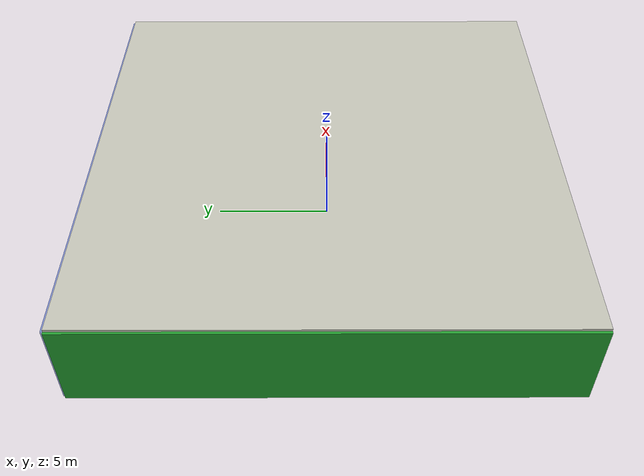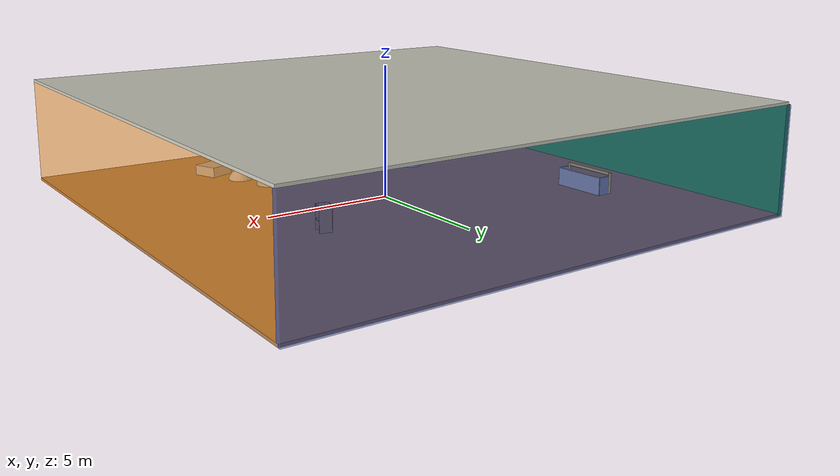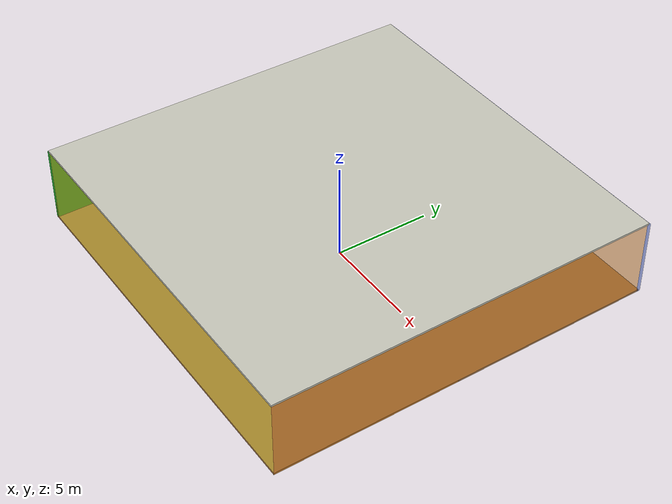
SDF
<sdf version="1.4">
 <world name="default">
  <physics type="ode">
   <max_step_size>0.001</max_step_size>
   <real_time_factor>1</real_time_factor>
   <real_time_update_rate>1000</real_time_update_rate>
   <gravity>0 0 -9.8</gravity>
  </physics>
  <scene><ambient>0.4 0.4 0.4 1</ambient><background>0.7 0.7 0.7 1</background><shadows>1</shadows></scene>
  <model name="Surrounding">
   <static>1</static>
   <link name="Ceiling">
    <collision name="Ceiling_Collision"><geometry><box><size>20 20 0.1</size></box></geometry></collision>
    <visual name="Ceiling_Visual">
     <geometry><box><size>20 20 0.1</size></box></geometry>
     <material>
      <script><uri>file://media/materials/scripts/gazebo.material</uri><name>Gazebo/PaintedWall</name></script>
     </material>
    </visual>
    <pose>0 0 4.05 0 0 0</pose>
   </link>
   <link name="Wall_South">
    <collision name="Wall_South_Collision">
     <geometry><box><size>20 0 4</size></box></geometry>
     <pose>0 0 2 0 -0 0</pose>
    </collision>
    <visual name="Wall_South_Visual">
     <pose>0 0 2 0 -0 0</pose>
     <geometry><box><size>20 0 4</size></box></geometry>
     <material>
      <script>
       <uri>file://media/materials/scripts/gazebo.material</uri>
       <name>Gazebo/YellowTransparent</name>
      </script>
     </material>
    </visual>
    <velocity_decay><linear>0</linear><angular>0</angular></velocity_decay>
    <pose>0 -10 0 0 -0 0</pose>
   </link>
   <link name="Wall_East">
    <collision name="Wall_21_Collision">
     <geometry><box><size>20 0 4</size></box></geometry>
     <pose>0 0 2 0 -0 0</pose>
    </collision>
    <visual name="Wall_21_Visual">
     <pose>0 0 2 0 -0 0</pose>
     <geometry><box><size>20 0 4</size></box></geometry>
     <material>
      <script>
       <uri>file://media/materials/scripts/gazebo.material</uri>
       <name>Gazebo/OrangeTransparent</name>
      </script>
     </material>
    </visual>
    <velocity_decay><linear>0</linear><angular>0</angular></velocity_decay>
    <pose>10 0 0 0 -0 1.5708</pose>
   </link>
   <link name="Wall_North">
    <collision name="Wall_22_Collision">
     <geometry><box><size>20 0.2 4</size></box></geometry>
     <pose>0 0 2 0 -0 0</pose>
    </collision>
    <visual name="Wall_22_Visual">
     <pose>0 0 2 0 -0 0</pose>
     <geometry><box><size>20 0.2 4</size></box></geometry>
     <material>
      <script><uri>file://media/materials/scripts/gazebo.material</uri><name>Gazebo/BlueTransparent</name></script>
     </material>
    </visual>
    <velocity_decay><linear>0</linear><angular>0</angular></velocity_decay>
    <pose>0 10 0 0 -0 0</pose>
   </link>
   <link name="Wall_West">
    <collision name="Wall_23_Collision">
     <geometry><box><size>20 0.2 4</size></box></geometry>
     <pose>0 0 2 0 -0 0</pose>
    </collision>
    <visual name="Wall_23_Visual">
     <pose>0 0 2 0 -0 0</pose>
     <geometry><box><size>20 0.2 4</size></box></geometry>
     <material>
      <script><uri>file://media/materials/scripts/gazebo.material</uri><name>Gazebo/GreenGlow</name></script>
     </material>
    </visual>
    <velocity_decay><linear>0</linear><angular>0</angular></velocity_decay>
    <pose>-10 0 0 0 0 -1.5708</pose>
   </link>
   <link name="Ground_link">
    <collision name="collision">
     <pose>0 0 .05 0 -0 0</pose>
     <geometry><box><size>20 20 0.1</size></box></geometry>
    </collision>
    <visual name="visual">
     <pose>0 0 .05 0 -0 0</pose>
     <geometry><box><size>20 20 0.1</size></box></geometry>
     <material>
      <script><uri>file://media/materials/scripts/gazebo.material</uri><name>Gazebo/WoodFloor</name></script>
     </material>
    </visual>
   </link>
   <static>1</static>
  </model>
  <spherical_coordinates>
   <surface_model>EARTH_WGS84</surface_model>
   <latitude_deg>0</latitude_deg>
   <longitude_deg>0</longitude_deg>
   <elevation>0</elevation>
   <heading_deg>0</heading_deg>
  </spherical_coordinates>
  <light name="lightball_0" type="diffuse">
   <diffuse>0.8 0.8 0.8 1</diffuse>
   <specular>0.2 0.2 0.2 1</specular>
   <attenuation>
    <range>100</range>
    <constant>0.7</constant>
    <linear>0.01</linear>
    <quadratic>0.001</quadratic>
   </attenuation>
   <direction>-0.5 0.1 -0.9</direction>
   <pose>2.93750458058 -2.55967884968 3.77811058589 0 0 0</pose>
  </light>
  <light name="lightball_1" type="diffuse">
   <diffuse>0.8 0.8 0.8 1</diffuse>
   <specular>0.2 0.2 0.2 1</specular>
   <attenuation>
    <range>100</range>
    <constant>0.7</constant>
    <linear>0.01</linear>
    <quadratic>0.001</quadratic>
   </attenuation>
   <direction>-0.5 0.1 -0.9</direction>
   <pose>8.67386197608 -0.308389544732 3.47852934899 0 0 0</pose>
  </light>
  <light name="lightball_2" type="diffuse">
   <diffuse>0.8 0.8 0.8 1</diffuse>
   <specular>0.2 0.2 0.2 1</specular>
   <attenuation>
    <range>100</range>
    <constant>0.7</constant>
    <linear>0.01</linear>
    <quadratic>0.001</quadratic>
   </attenuation>
   <direction>-0.5 0.1 -0.9</direction>
   <pose>-5.03439022719 3.85522768084 2.78634062396 0 0 0</pose>
  </light>
  <light name="lightball_3" type="diffuse">
   <diffuse>0.8 0.8 0.8 1</diffuse>
   <specular>0.2 0.2 0.2 1</specular>
   <attenuation>
    <range>100</range>
    <constant>0.7</constant>
    <linear>0.01</linear>
    <quadratic>0.001</quadratic>
   </attenuation>
   <direction>-0.5 0.1 -0.9</direction>
   <pose>9.30122639204 3.86919926329 3.6735121278 0 0 0</pose>
  </light>
  <light name="lightball_4" type="diffuse">
   <diffuse>0.8 0.8 0.8 1</diffuse>
   <specular>0.2 0.2 0.2 1</specular>
   <attenuation>
    <range>100</range>
    <constant>0.7</constant>
    <linear>0.01</linear>
    <quadratic>0.001</quadratic>
   </attenuation>
   <direction>-0.5 0.1 -0.9</direction>
   <pose>3.3175799319 -7.43148730329 1.46141462368 0 0 0</pose>
  </light>
  <light name="lightball_5" type="diffuse">
   <diffuse>0.8 0.8 0.8 1</diffuse>
   <specular>0.2 0.2 0.2 1</specular>
   <attenuation>
    <range>100</range>
    <constant>0.7</constant>
    <linear>0.01</linear>
    <quadratic>0.001</quadratic>
   </attenuation>
   <direction>-0.5 0.1 -0.9</direction>
   <pose>-5.72717226319 -9.09864279037 1.78957925693 0 0 0</pose>
  </light>
  <include>
   <uri>model://robocup_3Dsim_goal</uri>
   <pose>-7.04590309305 3.64967651579 0 0 0 0.0181995134454</pose>
  </include>
  <include>
   <uri>model://textured_shapes</uri>
   <pose>-2.17870839727 -3.81203249529 0 0 0 1.3095526695</pose>
  </include>
  <include>
   <uri>model://textured_shapes</uri>
   <pose>3.43057194203 -5.26605039035 0 0 0 0.372008438441</pose>
  </include>
  <include><uri>model://cabinet</uri><pose>4.3301626678 2.69467991238 0 0 0 2.88417015268</pose></include>
 </world>
</sdf>

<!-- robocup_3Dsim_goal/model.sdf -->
<sdf version="1.5">
  <model name="robocup_3d_goal">
    <static>true</static>
    <link name="left_post">
      <pose>0 1.05 0.45 0 0 0</pose>
      <collision name="collision">
        <geometry>
          <cylinder>
            <radius>0.05</radius>
            <length>0.9</length>
          </cylinder>
        </geometry>
      </collision>
      <visual name="visual">
        <geometry>
          <cylinder>
            <radius>0.05</radius>
            <length>0.9</length>
          </cylinder>
        </geometry>
        <material>
          <script>
            <uri>file://media/materials/scripts/gazebo.material</uri>
            <name>Gazebo/ZincYellow</name>
          </script>
        </material>
      </visual>
    </link>
    <link name="left_support_horiz_lower">
      <pose>0.30 1.05 0.01 0 0 0</pose>
      <collision name="collision">
        <geometry>
          <box>
            <size>0.50 0.02 0.02</size>
          </box>
        </geometry>
      </collision>
      <visual name="visual">
        <geometry>
          <box>
            <size>0.50 0.02 0.02</size>
          </box>
        </geometry>
        <material>
          <script>
            <uri>file://media/materials/scripts/gazebo.material</uri>
            <name>Gazebo/White</name>
          </script>
        </material>
      </visual>
    </link>
    <link name="left_support_horiz_upper">
      <pose>0.30 1.05 0.79 0 0 0</pose>
      <collision name="collision">
        <geometry>
          <box>
            <size>0.50 0.02 0.02</size>
          </box>
        </geometry>
      </collision>
      <visual name="visual">
        <geometry>
          <box>
            <size>0.50 0.02 0.02</size>
          </box>
        </geometry>
        <material>
          <script>
            <uri>file://media/materials/scripts/gazebo.material</uri>
            <name>Gazebo/White</name>
          </script>
        </material>
      </visual>
    </link>
    <link name="left_support_vertical">
      <pose>0.56 1.05 0.4 0 1.5708 0</pose>
      <collision name="collision">
        <geometry>
          <box>
            <size>0.80 0.02 0.02</size>
          </box>
        </geometry>
      </collision>
      <visual name="visual">
        <geometry>
          <box>
            <size>0.80 0.02 0.02</size>
          </box>
        </geometry>
        <material>
          <script>
            <uri>file://media/materials/scripts/gazebo.material</uri>
            <name>Gazebo/White</name>
          </script>
        </material>
      </visual>
    </link>
    <link name="right_support_horiz_lower">
      <pose>0.30 -1.05 0.01 0 0 0</pose>
      <collision name="collision">
        <geometry>
          <box>
            <size>0.50 0.02 0.02</size>
          </box>
        </geometry>
      </collision>
      <visual name="visual">
        <geometry>
          <box>
            <size>0.50 0.02 0.02</size>
          </box>
        </geometry>
        <material>
          <script>
            <uri>file://media/materials/scripts/gazebo.material</uri>
            <name>Gazebo/White</name>
          </script>
        </material>
      </visual>
    </link>
    <link name="right_support_horiz_upper">
      <pose>0.30 -1.05 0.79 0 0 0</pose>
      <collision name="collision">
        <geometry>
          <box>
            <size>0.50 0.02 0.02</size>
          </box>
        </geometry>
      </collision>
      <visual name="visual">
        <geometry>
          <box>
            <size>0.50 0.02 0.02</size>
          </box>
        </geometry>
        <material>
          <script>
            <uri>file://media/materials/scripts/gazebo.material</uri>
            <name>Gazebo/White</name>
          </script>
        </material>
      </visual>
    </link>
    <link name="right_support_vertical">
      <pose>0.56 -1.05 0.4 0 1.5708 0</pose>
      <collision name="collision">
        <geometry>
          <box>
            <size>0.80 0.02 0.02</size>
          </box>
        </geometry>
      </collision>
      <visual name="visual">
        <geometry>
          <box>
            <size>0.80 0.02 0.02</size>
          </box>
        </geometry>
        <material>
          <script>
            <uri>file://media/materials/scripts/gazebo.material</uri>
            <name>Gazebo/White</name>
          </script>
        </material>
      </visual>
    </link>
    <link name="center_support_horiz_lower">
      <pose>0.56 0 0.01 0 1.5708 0</pose>
      <collision name="collision">
        <geometry>
          <box>
            <size>0.02 2.08 0.02</size>
          </box>
        </geometry>
      </collision>
      <visual name="visual">
        <geometry>
          <box>
            <size>0.02 2.08 0.02</size>
          </box>
        </geometry>
        <material>
          <script>
            <uri>file://media/materials/scripts/gazebo.material</uri>
            <name>Gazebo/White</name>
          </script>
        </material>
      </visual>
    </link>
    <link name="center_support_horiz_upper">
      <pose>0.56 0 0.79 0 1.5708 0</pose>
      <collision name="collision">
        <geometry>
          <box>
            <size>0.02 2.08 0.02</size>
          </box>
        </geometry>
      </collision>
      <visual name="visual">
        <geometry>
          <box>
            <size>0.02 2.08 0.02</size>
          </box>
        </geometry>
        <material>
          <script>
            <uri>file://media/materials/scripts/gazebo.material</uri>
            <name>Gazebo/White</name>
          </script>
        </material>
      </visual>
    </link>
    <link name="right_post">
      <pose>0 -1.05 0.45 0 0 0</pose>
      <collision name="collision">
        <geometry>
          <cylinder>
            <radius>0.05</radius>
            <length>0.9</length>
          </cylinder>
        </geometry>
      </collision>
      <visual name="visual">
        <geometry>
          <cylinder>
            <radius>0.05</radius>
            <length>0.9</length>
          </cylinder>
        </geometry>
        <material>
          <script>
            <uri>file://media/materials/scripts/gazebo.material</uri>
            <name>Gazebo/ZincYellow</name>
          </script>
        </material>
      </visual>
    </link>
    <link name="crossbar">
      <pose>0 0 0.85 1.57 1.57 0</pose>
      <collision name="collision">
        <geometry>
          <cylinder>
            <radius>0.05</radius>
            <length>2.0</length>
          </cylinder>
        </geometry>
      </collision>
      <visual name="visual">
        <geometry>
          <cylinder>
            <radius>0.05</radius>
            <length>2.0</length>
          </cylinder>
        </geometry>
        <material>
          <script>
            <uri>file://media/materials/scripts/gazebo.material</uri>
            <name>Gazebo/ZincYellow</name>
          </script>
        </material>
      </visual>
    </link>
    <link name="center_net">
      <pose>0.56 0 0.40 0 0 0</pose>
      <collision name="collision">
        <geometry>
          <box>
            <size>0.01 2.1 0.80</size>
          </box>
        </geometry>
      </collision>
      <visual name="visual">
        <geometry>
          <box>
            <size>0.01 2.1 0.80</size>
          </box>
        </geometry>
        <material>
          <script>
            <uri>model://../model_source/models/robocup09_spl_field/materials/scripts/</uri>
            <uri>model://../model_source/models/robocup09_spl_field/materials/textures/</uri>
            <name>RoboCup/Net</name>
          </script>
        </material>
      </visual>
    </link>
    <link name="left_net">
      <pose>0.30 1.05 0.40 0 0 0</pose>
      <collision name="collision">
        <geometry>
          <box>
            <size>0.50 0.01 0.76</size>
          </box>
        </geometry>
      </collision>
      <visual name="visual">
        <geometry>
          <box>
            <size>0.50 0.01 0.76</size>
          </box>
        </geometry>
        <material>
          <script>
            <uri>model://../model_source/models/robocup09_spl_field/materials/scripts/</uri>
            <uri>model://../model_source/models/robocup09_spl_field/materials/textures/</uri>
            <name>RoboCup/Net</name>
          </script>
        </material>
      </visual>
    </link>
    <link name="right_net">
      <pose>0.30 -1.05 0.40 0 0 0</pose>
      <collision name="collision">
        <geometry>
          <box>
            <size>0.50 0.01 0.76</size>
          </box>
        </geometry>
      </collision>
      <visual name="visual">
        <geometry>
          <box>
            <size>0.50 0.01 0.76</size>
          </box>
        </geometry>
        <material>
          <script>
            <uri>model://../model_source/models/robocup09_spl_field/materials/scripts/</uri>
            <uri>model://../model_source/models/robocup09_spl_field/materials/textures/</uri>
            <name>RoboCup/Net</name>
          </script>
        </material>
      </visual>
    </link>
  </model>
</sdf>

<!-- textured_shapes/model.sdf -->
<sdf version="1.6">
  <model name="textured_shapes">
    <pose>0 0 0.5 0 0 0</pose>
    <link name="box">
      <pose>0 -1.5 0 0 0 0</pose>
      <collision name="collision">
        <geometry>
          <box>
            <size>1 1 1</size>
          </box>
        </geometry>
      </collision>
      <visual name="visual">
        <geometry>
          <box>
            <size>1 1 1</size>
          </box>
        </geometry>
        <material>
          <script>
            <uri>model://../model_source/models/textured_shapes/materials/scripts</uri>
            <uri>model://../model_source/models/textured_shapes/materials/textures</uri>
            <name>TexturedShape/Squares</name>
          </script>
        </material>
      </visual>
    </link>
    <link name="sphere">
      <collision name="collision">
        <geometry>
          <sphere>
            <radius>0.5</radius>
          </sphere>
        </geometry>
      </collision>
      <visual name="visual">
        <geometry>
          <sphere>
            <radius>0.5</radius>
          </sphere>
        </geometry>
        <material>
          <script>
            <uri>model://../model_source/models/textured_shapes/materials/scripts</uri>
            <uri>model://../model_source/models/textured_shapes/materials/textures</uri>
            <name>TexturedShape/Squares</name>
          </script>
        </material>
      </visual>
    </link>
    <link name="cylinder">
      <pose>0 1.5 0 0 0 0</pose>
      <collision name="collision">
        <geometry>
          <cylinder>
            <radius>0.5</radius>
            <length>1</length>
          </cylinder>
        </geometry>
      </collision>
      <visual name="visual">
        <geometry>
          <cylinder>
            <radius>0.5</radius>
            <length>1</length>
          </cylinder>
        </geometry>
        <material>
          <script>
            <uri>model://../model_source/models/textured_shapes/materials/scripts</uri>
            <uri>model://../model_source/models/textured_shapes/materials/textures</uri>
            <name>TexturedShape/Squares</name>
          </script>
        </material>
      </visual>
    </link>
  </model>
</sdf>

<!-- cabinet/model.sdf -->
<sdf version="1.5">
  <model name="cabinet">
    <static>true</static>
    <link name="cabinet_bottom_plate">
      <inertial>
        <pose>0 0 -1 0 0 0</pose>
        <inertia>
          <ixx>2.050000</ixx>
          <ixy>0</ixy>
          <ixz>0</ixz>
          <iyy>2.050000</iyy>
          <iyz>0</iyz>
          <izz>2.050000</izz>
        </inertia>
        <mass>25.000000</mass>
      </inertial>
      <collision name="cabinet_bottom_plate_geom">
        <pose>0 0 0.010000 0 0 0</pose>
        <geometry>
          <box>
            <size>0.450000 0.450000 0.020000</size>
          </box>
        </geometry>
      </collision>
      <visual name="cabinet_bottom_plate_geom_visual">
        <pose>0 0 0.010000 0 0 0</pose>
        <geometry>
          <box>
            <size>0.450000 0.450000 0.020000</size>
          </box>
        </geometry>
        <material>
          <script>
            <uri>model://media/materials/scripts/gazebo.material</uri>
            <name>Gazebo/Wood</name>
          </script>
        </material>
      </visual>
      <collision name="cabinet_bottom_plate_geom_cabinet_back_plate">
        <pose>0.235000 0 0.510000 0 0 0</pose>
        <geometry>
          <box>
            <size>0.020000 0.450000 1.020000</size>
          </box>
        </geometry>
      </collision>
      <visual name="cabinet_bottom_plate_geom_cabinet_back_plate_visual">
        <pose>0.235000 0 0.510000 0 0 0</pose>
        <geometry>
          <box>
            <size>0.020000 0.450000 1.020000</size>
          </box>
        </geometry>
        <material>
          <script>
            <uri>model://media/materials/scripts/gazebo.material</uri>
            <name>Gazebo/Wood</name>
          </script>
        </material>
      </visual>
      <collision name="cabinet_bottom_plate_geom_cabinet_left_plate">
        <pose>0 0.235000 0.510000 0 0 0</pose>
        <geometry>
          <box>
            <size>0.450000 0.020000 1.020000</size>
          </box>
        </geometry>
      </collision>
      <visual name="cabinet_bottom_plate_geom_cabinet_left_plate_visual">
        <pose>0 0.235000 0.510000 0 0 0</pose>
        <geometry>
          <box>
            <size>0.450000 0.020000 1.020000</size>
          </box>
        </geometry>
        <material>
          <script>
            <uri>model://media/materials/scripts/gazebo.material</uri>
            <name>Gazebo/Wood</name>
          </script>
        </material>
      </visual>
      <collision name="cabinet_bottom_plate_geom_cabinet_middle_plate">
        <pose>0 0 0.510000 0 0 0</pose>
        <geometry>
          <box>
            <size>0.450000 0.450000 0.020000</size>
          </box>
        </geometry>
      </collision>
      <visual name="cabinet_bottom_plate_geom_cabinet_middle_plate_visual">
        <pose>0 0 0.510000 0 0 0</pose>
        <geometry>
          <box>
            <size>0.450000 0.450000 0.020000</size>
          </box>
        </geometry>
        <material>
          <script>
            <uri>model://media/materials/scripts/gazebo.material</uri>
            <name>Gazebo/Wood</name>
          </script>
        </material>
      </visual>
      <collision name="cabinet_bottom_plate_geom_cabinet_right_plate">
        <pose>0 -0.235000 0.510000 0 0 0</pose>
        <geometry>
          <box>
            <size>0.450000 0.020000 1.020000</size>
          </box>
        </geometry>
      </collision>
      <visual name="cabinet_bottom_plate_geom_cabinet_right_plate_visual">
        <pose>0 -0.235000 0.510000 0 0 0</pose>
        <geometry>
          <box>
            <size>0.450000 0.020000 1.020000</size>
          </box>
        </geometry>
        <material>
          <script>
            <uri>model://media/materials/scripts/gazebo.material</uri>
            <name>Gazebo/Wood</name>
          </script>
        </material>
      </visual>
      <collision name="cabinet_bottom_plate_geom_cabinet_top_plate">
        <pose>0 0 1.010000 0 0 0</pose>
        <geometry>
          <box>
            <size>0.450000 0.450000 0.020000</size>
          </box>
        </geometry>
      </collision>
      <visual name="cabinet_bottom_plate_geom_cabinet_top_plate_visual">
        <pose>0 0 1.010000 0 0 0</pose>
        <geometry>
          <box>
            <size>0.450000 0.450000 0.020000</size>
          </box>
        </geometry>
        <material>
          <script>
            <uri>model://media/materials/scripts/gazebo.material</uri>
            <name>Gazebo/Wood</name>
          </script>
        </material>
      </visual>
    </link>
  </model>
</sdf>
